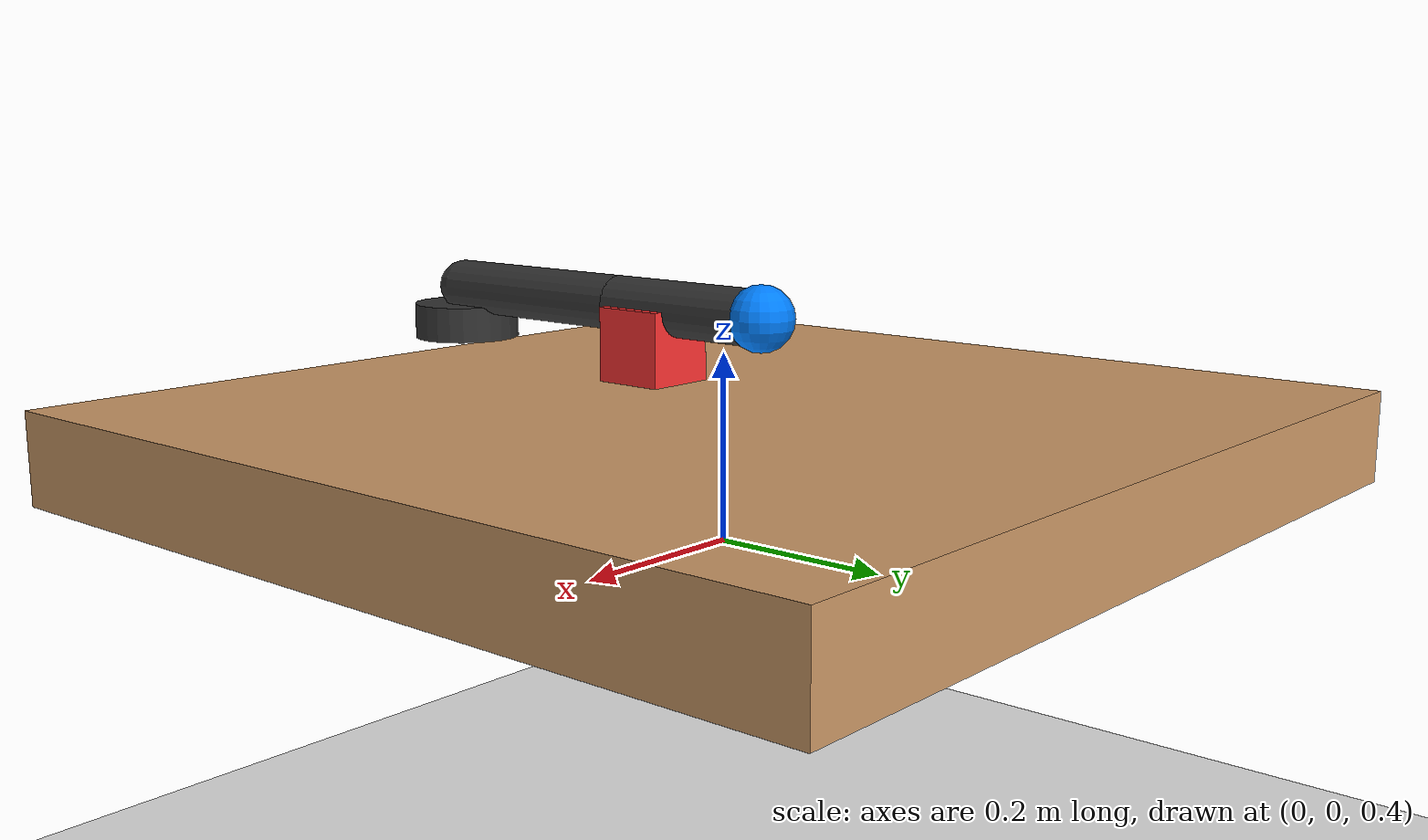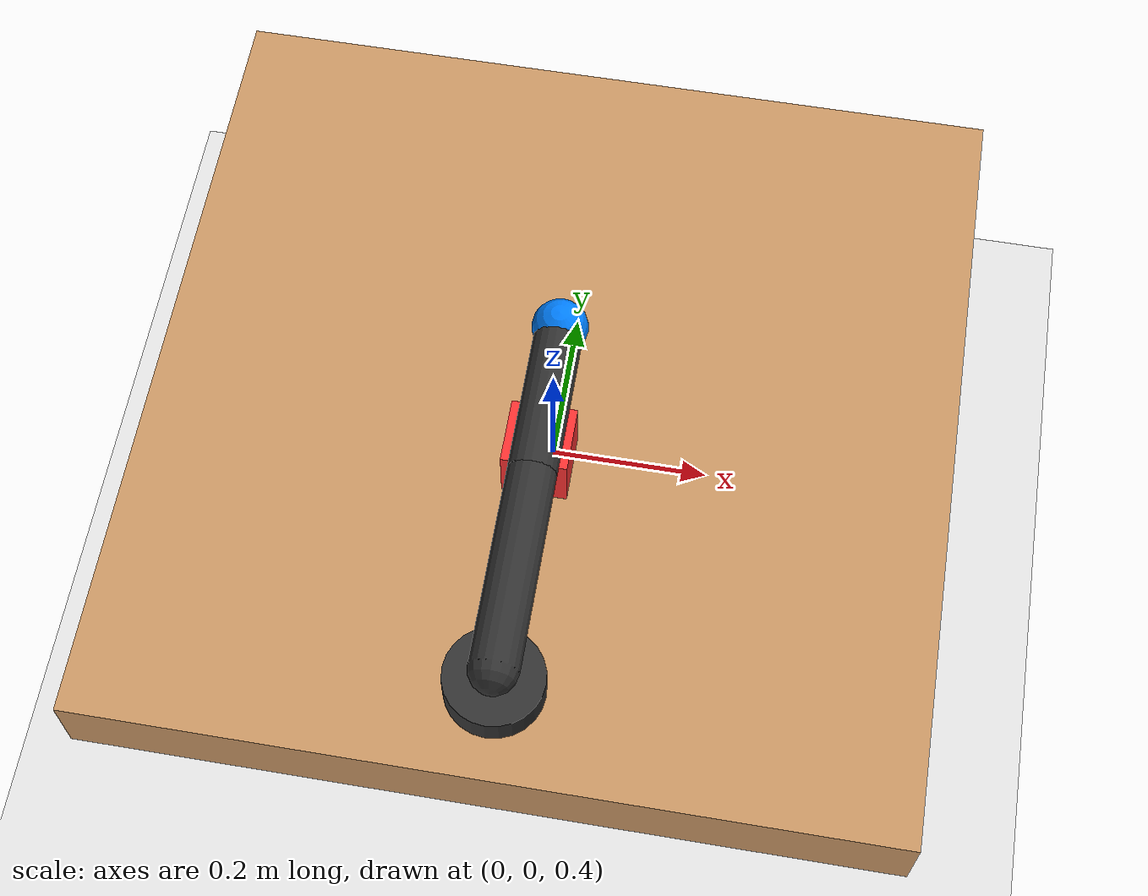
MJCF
<mujoco model="VLA_Tabletop">
    <compiler angle="radian"/>
    <option gravity="0 0 -9.81" timestep="0.01"/>

    <asset>
        <material name="table_mat" rgba="0.8 0.6 0.4 1"/>
        <material name="block_mat" rgba="1 0.2 0.2 1"/> <material name="robot_mat" rgba="0.2 0.2 0.2 1"/>
    </asset>

    <worldbody>
        <light pos="0 0 3" dir="0 0 -1" directional="true"/>
        <geom type="plane" size="1 1 0.1" rgba="0.9 0.9 0.9 1"/>

        <camera name="overhead_cam" pos="0 0 1.2" mode="fixed"/>

        <body name="table" pos="0 0 0.5">
            <geom type="box" size="0.5 0.5 0.05" material="table_mat"/>
        </body>

        <body name="red_block" pos="0 -0.1 0.6"> <freejoint/>
            <geom type="box" size="0.04 0.04 0.04" material="block_mat" mass="0.1" friction="1 0.005 0.0001"/>
        </body>

        <body name="robot_base" pos="0 -0.4 0.6"> <geom type="cylinder" size="0.06 0.02" material="robot_mat"/>
            <body name="link1" pos="0 0 0.04">
                <joint name="joint1" type="hinge" axis="0 0 1" range="-1.5 1.5"/>
                <geom type="capsule" fromto="0 0 0  0 0.25 0" size="0.03" material="robot_mat"/>
                <body name="link2" pos="0 0.25 0">
                    <joint name="joint2" type="hinge" axis="0 0 1" range="-1.5 1.5"/>
                    <geom type="capsule" fromto="0 0 0  0 0.2 0" size="0.03" material="robot_mat"/>
                    <body name="end_effector" pos="0 0.2 0">
                        <geom type="sphere" size="0.035" rgba="0 0.5 1 1"/>
                    </body>
                </body>
            </body>
        </body>
    </worldbody>

    <actuator>
        <position name="motor1" joint="joint1" kp="20" ctrlrange="-1.5 1.5"/>
        <position name="motor2" joint="joint2" kp="20" ctrlrange="-1.5 1.5"/>
    </actuator>
</mujoco>
